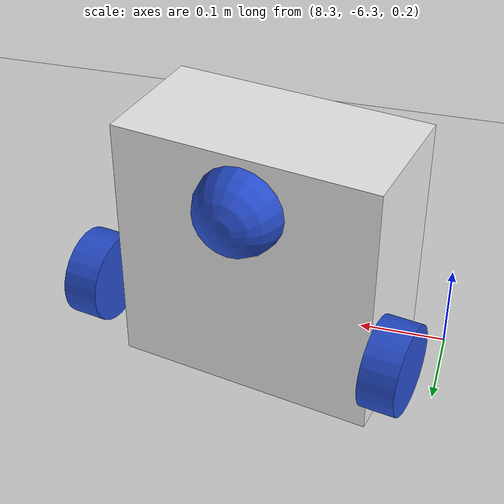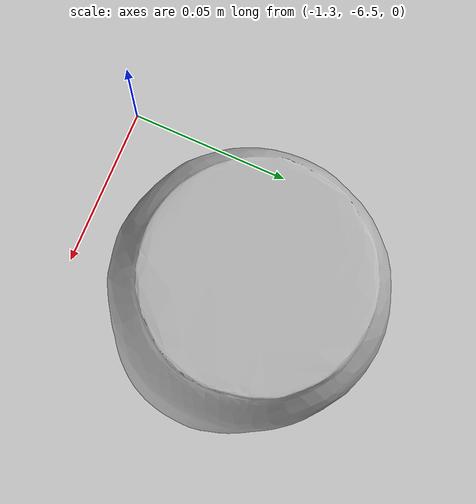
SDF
<sdf version="1.7">
 <world name="default">
  <light name="sun" type="directional">
   <pose>0 0 10 0 -0 0</pose>
   <diffuse>0.8 0.8 0.8 1</diffuse>
   <specular>0.2 0.2 0.2 1</specular>
   <attenuation>
    <range>1000</range>
    <constant>0.9</constant>
    <linear>0.01</linear>
    <quadratic>0.001</quadratic>
   </attenuation>
   <direction>-0.5 0.1 -0.9</direction>
   <spot><inner_angle>0</inner_angle><outer_angle>0</outer_angle><falloff>0</falloff></spot>
  </light>
  <model name="ground_plane">
   <static>1</static>
   <link name="link">
    <collision name="collision">
     <geometry><plane><normal>0 0 1</normal><size>100 100</size></plane></geometry>
     <surface>
      <contact><collide_bitmask>65535</collide_bitmask></contact>
      <friction><ode><mu>100</mu><mu2>50</mu2></ode></friction>
     </surface>
    </collision>
    <visual name="visual">
     <cast_shadows>0</cast_shadows>
     <geometry><plane><normal>0 0 1</normal><size>100 100</size></plane></geometry>
     <material>
      <script><uri>file://media/materials/scripts/gazebo.material</uri><name>Gazebo/Grey</name></script>
     </material>
    </visual>
   </link>
  </model>
  <gravity>0 0 -9.8</gravity>
  <magnetic_field>6e-06 2.3e-05 -4.2e-05</magnetic_field>
  <atmosphere type="adiabatic"/>
  <physics type="ode">
   <max_step_size>0.001</max_step_size>
   <real_time_factor>1</real_time_factor>
   <real_time_update_rate>1000</real_time_update_rate>
  </physics>
  <scene><ambient>0.4 0.4 0.4 1</ambient><background>0.7 0.7 0.7 1</background><shadows>1</shadows></scene>
  <audio><device>default</device></audio>
  <spherical_coordinates>
   <surface_model>EARTH_WGS84</surface_model>
   <latitude_deg>0</latitude_deg>
   <longitude_deg>0</longitude_deg>
   <elevation>0</elevation>
   <heading_deg>0</heading_deg>
  </spherical_coordinates>
  <model name="coke_can">
   <link name="link">
    <inertial>
     <pose>0 0 0.06 0 -0 0</pose>
     <mass>0.39</mass>
     <inertia>
      <ixx>0.00055575</ixx>
      <ixy>0</ixy>
      <ixz>0</ixz>
      <iyy>0.00055575</iyy>
      <iyz>0</iyz>
      <izz>0.0001755</izz>
     </inertia>
    </inertial>
    <collision name="collision">
     <pose>0.003937 0.004724 -0.18 0 -0 0</pose>
     <geometry><mesh><uri>model://coke_can/meshes/coke_can.dae</uri></mesh></geometry>
     <surface>
      <friction><ode><mu>1</mu><mu2>1</mu2></ode></friction>
      <contact><ode><kp>1e+07</kp><kd>1</kd><min_depth>0.001</min_depth><max_vel>0.1</max_vel></ode></contact>
     </surface>
    </collision>
    <visual name="visual">
     <pose>0.003937 0.004724 -0.18 0 -0 0</pose>
     <geometry><mesh><uri>model://coke_can/meshes/coke_can.dae</uri></mesh></geometry>
    </visual>
   </link>
   <pose>4.60969 5.13738 -0.030876 1.54394 -0.460206 -1.69259</pose>
  </model>
  <model name="coke_can_0">
   <link name="link">
    <inertial>
     <pose>0 0 0.06 0 -0 0</pose>
     <mass>0.39</mass>
     <inertia>
      <ixx>0.00055575</ixx>
      <ixy>0</ixy>
      <ixz>0</ixz>
      <iyy>0.00055575</iyy>
      <iyz>0</iyz>
      <izz>0.0001755</izz>
     </inertia>
    </inertial>
    <collision name="collision">
     <pose>0.003937 0.004724 -0.18 0 -0 0</pose>
     <geometry><mesh><uri>model://coke_can/meshes/coke_can.dae</uri></mesh></geometry>
     <surface>
      <friction><ode><mu>1</mu><mu2>1</mu2></ode></friction>
      <contact><ode><kp>1e+07</kp><kd>1</kd><min_depth>0.001</min_depth><max_vel>0.1</max_vel></ode></contact>
     </surface>
    </collision>
    <visual name="visual">
     <pose>0.003937 0.004724 -0.18 0 -0 0</pose>
     <geometry><mesh><uri>model://coke_can/meshes/coke_can.dae</uri></mesh></geometry>
    </visual>
   </link>
   <pose>-1.24989 -6.44815 -0.002927 -0.063683 -0.007829 -0.000604</pose>
  </model>
  <model name="my_bot">
   <link name="base_link">
    <inertial>
     <pose>0.065 0 0.0625 0 -0 0</pose>
     <mass>0.6</mass>
     <inertia>
      <ixx>0.00525625</ixx>
      <ixy>0</ixy>
      <ixz>0.0005625</ixz>
      <iyy>0.00593125</iyy>
      <iyz>0</iyz>
      <izz>0.008275</izz>
     </inertia>
    </inertial>
    <collision name="base_link_fixed_joint_lump__chassis_collision">
     <pose>0.05 0 0.075 0 -0 0</pose>
     <geometry><box><size>0.3 0.3 0.15</size></box></geometry>
    </collision>
    <collision name="base_link_fixed_joint_lump__caster_wheel_collision_1">
     <pose>0.14 0 0 0 -0 0</pose>
     <geometry><sphere><radius>0.05</radius></sphere></geometry>
     <surface><friction><ode><mu>0.001</mu><mu2>0.001</mu2></ode></friction></surface>
    </collision>
    <visual name="base_link_fixed_joint_lump__chassis_visual">
     <pose>0.05 0 0.075 0 -0 0</pose>
     <geometry><box><size>0.3 0.3 0.15</size></box></geometry>
     <material>
      <script><name>Gazebo/White</name><uri>file://media/materials/scripts/gazebo.material</uri></script>
     </material>
    </visual>
    <visual name="base_link_fixed_joint_lump__caster_wheel_visual_1">
     <pose>0.14 0 0 0 -0 0</pose>
     <geometry><sphere><radius>0.05</radius></sphere></geometry>
     <material>
      <script><name>Gazebo/Blue</name><uri>file://media/materials/scripts/gazebo.material</uri></script>
     </material>
    </visual>
   </link>
   <joint name="left_wheel_joint" type="revolute">
    <pose relative_to="base_link">0 0.175 0 -1.5708 0 0</pose>
    <parent>base_link</parent>
    <child>left_wheel</child>
    <axis>
     <xyz>0 0 1</xyz>
     <limit><lower>-1e+16</lower><upper>1e+16</upper></limit>
     <dynamics><spring_reference>0</spring_reference><spring_stiffness>0</spring_stiffness></dynamics>
    </axis>
   </joint>
   <link name="left_wheel">
    <pose relative_to="left_wheel_joint">0 0 0 0 -0 0</pose>
    <inertial>
     <mass>0.1</mass>
     <inertia>
      <ixx>7.58333e-05</ixx>
      <ixy>0</ixy>
      <ixz>0</ixz>
      <iyy>7.58333e-05</iyy>
      <iyz>0</iyz>
      <izz>0.000125</izz>
     </inertia>
    </inertial>
    <collision name="left_wheel_collision">
     <geometry><cylinder><length>0.04</length><radius>0.05</radius></cylinder></geometry>
    </collision>
    <visual name="left_wheel_visual">
     <geometry><cylinder><length>0.04</length><radius>0.05</radius></cylinder></geometry>
     <material>
      <script><name>Gazebo/Blue</name><uri>file://media/materials/scripts/gazebo.material</uri></script>
     </material>
    </visual>
   </link>
   <joint name="right_wheel_joint" type="revolute">
    <pose relative_to="base_link">0 -0.175 0 1.5708 -0 0</pose>
    <parent>base_link</parent>
    <child>right_wheel</child>
    <axis>
     <xyz>0 0 -1</xyz>
     <limit><lower>-1e+16</lower><upper>1e+16</upper></limit>
     <dynamics><spring_reference>0</spring_reference><spring_stiffness>0</spring_stiffness></dynamics>
    </axis>
   </joint>
   <link name="right_wheel">
    <pose relative_to="right_wheel_joint">0 0 0 0 -0 0</pose>
    <inertial>
     <mass>0.1</mass>
     <inertia>
      <ixx>7.58333e-05</ixx>
      <ixy>0</ixy>
      <ixz>0</ixz>
      <iyy>7.58333e-05</iyy>
      <iyz>0</iyz>
      <izz>0.000125</izz>
     </inertia>
    </inertial>
    <collision name="right_wheel_collision">
     <geometry><cylinder><length>0.04</length><radius>0.05</radius></cylinder></geometry>
    </collision>
    <visual name="right_wheel_visual">
     <geometry><cylinder><length>0.04</length><radius>0.05</radius></cylinder></geometry>
     <material>
      <script><name>Gazebo/Blue</name><uri>file://media/materials/scripts/gazebo.material</uri></script>
     </material>
    </visual>
   </link>
   <static>0</static>
   <plugin name="diff_drive" filename="libgazebo_ros_diff_drive.so">
    <left_joint>left_wheel_joint</left_joint>
    <right_joint>right_wheel_joint</right_joint>
    <wheel_separation>0.35</wheel_separation>
    <wheel_diameter>0.1</wheel_diameter>
    <max_wheel_torque>200</max_wheel_torque>
    <max_wheel_acceleration>10.0</max_wheel_acceleration>
    <odometry_frame>odom</odometry_frame>
    <robot_base_frame>base_link</robot_base_frame>
    <publish_odom>1</publish_odom>
    <publish_odom_tf>1</publish_odom_tf>
    <publish_wheel_tf>1</publish_wheel_tf>
   </plugin>
   <pose>8.51293 -6.1726 0.2898 -2.44349 -1.57079 -2.46293</pose>
  </model>
 </world>
</sdf>
